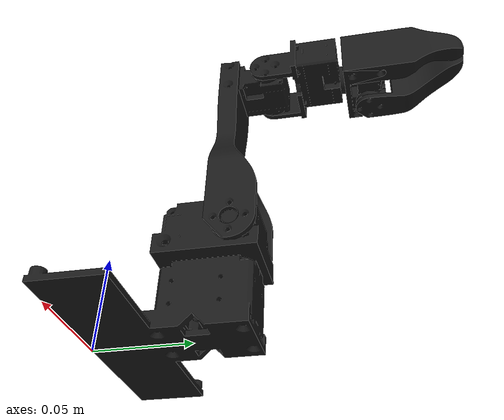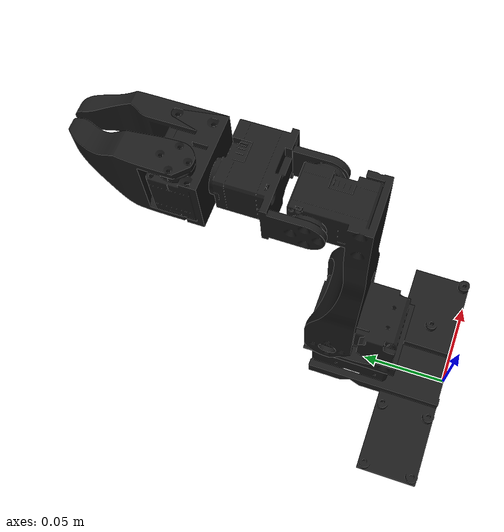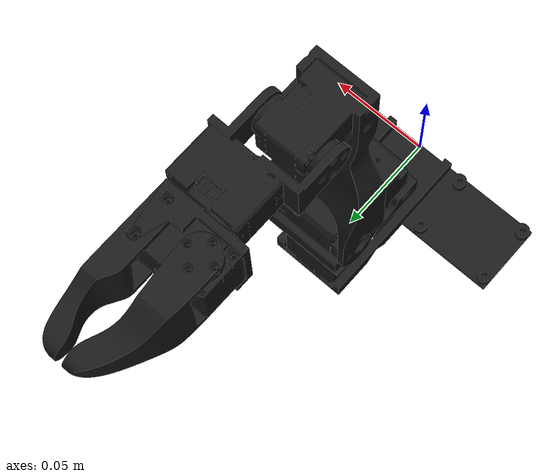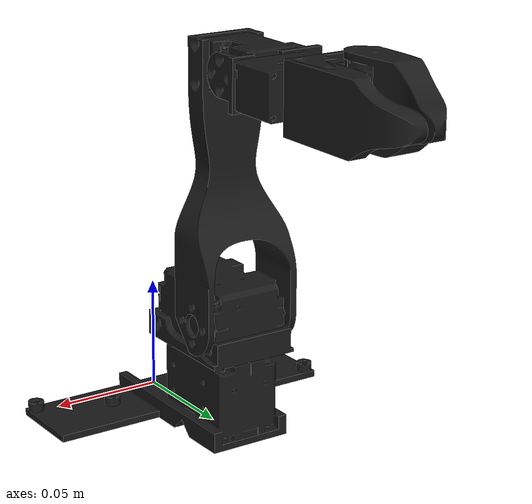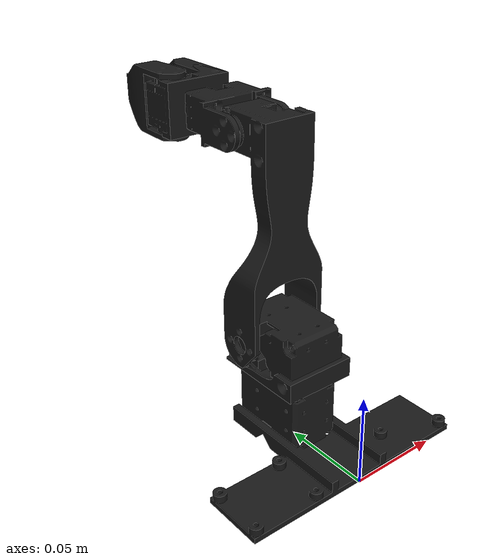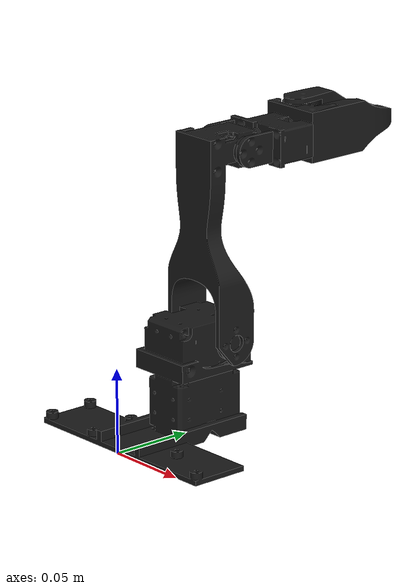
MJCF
<mujoco model="low_cost_robot">
    <compiler angle="radian" meshdir="assets" texturedir="assets" autolimits="true"/>
    <!-- The timestep has a big influence on the contacts stability -->
    <option cone="elliptic" impratio="10" timestep="0.001"/>

    <asset>
        <mesh file="base_link.stl" scale="0.001 0.001 0.001"/>
        <mesh file="first-bracket-motor_1.stl" scale="0.001 0.001 0.001"/>
        <mesh file="shoulder-to-elbow-motor_v1_1.stl" scale="0.001 0.001 0.001"/>
        <mesh file="elbow-to-wrist-motor-reference_v1_1.stl" scale="0.001 0.001 0.001"/>
        <mesh file="gripper-static-motor-pt1.stl" scale="0.001 0.001 0.001"/>
        <mesh file="gripper-static-motor-pt2.stl" scale="0.001 0.001 0.001"/>
        <mesh file="gripper-moving-part-dumb_v2_1.stl" scale="0.001 0.001 0.001"/>
    </asset>

    <default>
        <default class="low_cost_robot">
            <general biastype="affine"/>
            <!-- NOTE: the joint pos are defined in world frame, so they're built by summing over urdf relative joint positioning -->
            <!-- NOTE: values other than axis and pos here have not been properly identified -->
            <joint axis="0 1 0"/>
            <default class="joint1">
                <joint axis="0 0 1" pos="0.00025 0.06875 0.0409" range="-3.14158 3.14158" damping="0.1"/>
                <position ctrlrange="-3.14158 3.14158" kp="25"/>
            </default>
            <default class="joint2">
                <joint axis="1 0 0" pos="0.01945 0.06895 0.05515" range="-3.14158 3.14158" damping="0.1"/>
                <position ctrlrange="-3.14158 3.14158" kp="25"/>
            </default>
            <default class="joint3">
                <joint axis="1 0 0" pos="-0.0143 0.08375 0.16345" range="-3.14158 3.14158" damping="0.1"/>
                <position ctrlrange="-3.14158 3.14158" kp="25"/>
            </default>
            <default class="joint4">
                <joint axis="0 -1 0" pos="-0.000893 0.128688 0.163437" range="-3.14158 3.14158" damping="0.1"/>
                <position ctrlrange="-3.14158 3.14158" kp="25"/>
            </default>
            <default class="joint5">
                <joint axis="0 0 -1" pos="-0.008443 0.141678 0.177687" range="-2.45 0.032" damping="0.1"/>
                <position ctrlrange="-2.45 0.032" kp="25"/>
            </default>
        </default>
    </default>

    <worldbody>
        <body name="base_link">
            <inertial pos="0 0 0" mass="0.0000001" diaginertia="0.0001 0.0001 0.0001"/>
            <geom type="mesh" name="base_link" mesh="base_link" rgba="0.1 0.1 0.1 1"/>
            <body name="joint1">
                <inertial pos="0 0 0" mass="0.0000001" diaginertia="0.0001 0.0001 0.0001"/>
                <joint name="joint1" class="joint1"/>
                <geom type="mesh" name="joint1" mesh="first-bracket-motor_1" rgba="0.1 0.1 0.1 1"/>
                <body name="joint2">
                    <inertial pos="0 0 0" mass="0.0000001" diaginertia="0.0001 0.0001 0.0001"/>
                    <joint name="joint2" class="joint2"/>
                    <geom type="mesh" name="joint2" mesh="shoulder-to-elbow-motor_v1_1" rgba="0.1 0.1 0.1 1"/>
                    <body name="joint3">
                        <inertial pos="0 0 0" mass="0.0000001" diaginertia="0.0001 0.0001 0.0001"/>
                        <joint name="joint3" class="joint3"/>
                        <geom type="mesh" name="joint3" mesh="elbow-to-wrist-motor-reference_v1_1" rgba="0.1 0.1 0.1 1"/>
                        <body name="joint4">
                            <inertial pos="0 0 0" mass="0.0000001" diaginertia="0.0001 0.0001 0.0001"/>
                            <joint name="joint4" class="joint4"/>
                            <geom type="mesh" name="joint4-pt1" mesh="gripper-static-motor-pt1" rgba="0.1 0.1 0.1 1"/>
                            <geom type="mesh" name="joint4" mesh="gripper-static-motor-pt2" rgba="0.1 0.1 0.1 1" contype="0" conaffinity="0"/>

                            <!-- Rectangular pad for contact -->
                            <body name="joint4-pad">
                                <geom type="box" condim="3" friction="0.7" mass="0.01" solimp="0.95 0.99 0.001" solref="0.004 1" name="static_finger_pad" size="0.006 0.006 0.006" pos="0.0135 0.192 0.1635" priority="1" rgba="0 0 0 0"/>
                            </body>

                            <body name="joint5">
                                <joint name="joint5" class="joint5"/>
                                <geom type="mesh" name="joint5" mesh="gripper-moving-part-dumb_v2_1" rgba="0.1 0.1 0.1 1" contype="0" conaffinity="0"/>

                                <!-- Rectangular pad for contact -->
                                <body name="joint5-pad">
                                    <geom type="box" condim="3" friction="0.7" mass="0.01" solimp="0.95 0.99 0.001" solref="0.004 1" name="moving_finger_pad" size="0.006 0.006 0.006" pos="-0.0007 0.192 0.1635" euler="0 0 -0.3" priority="1" rgba="0 0 0 0"/>
                                </body>

                            </body>
                            <!-- End effector frame in the middle of the two grippers -->
                            <body>
                                <geom type="sphere" name="end_effector" size="0.001" pos="-0.005 0.1935 0.1635" contype="0" conaffinity="0" rgba="0 0 0 0"/>
                            </body>
                        </body>
                    </body>
                </body>
            </body>
        </body>
    </worldbody>

    <actuator>
        <position class="joint1" name="joint1" joint="joint1"/>
        <position class="joint2" name="joint2" joint="joint2"/>
        <position class="joint3" name="joint3" joint="joint3"/>
        <position class="joint4" name="joint4" joint="joint4"/>
        <position class="joint5" name="joint5" joint="joint5"/>
    </actuator>

</mujoco>
